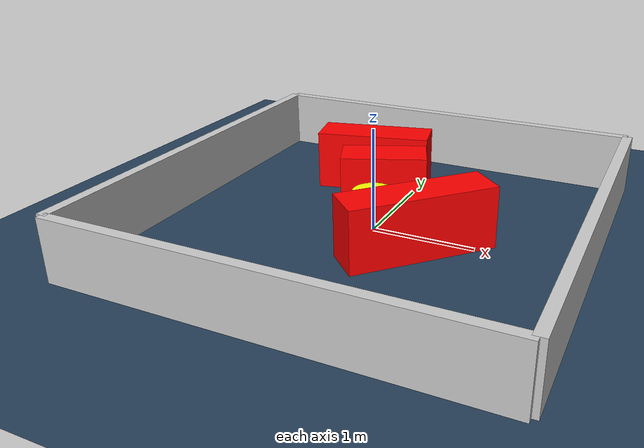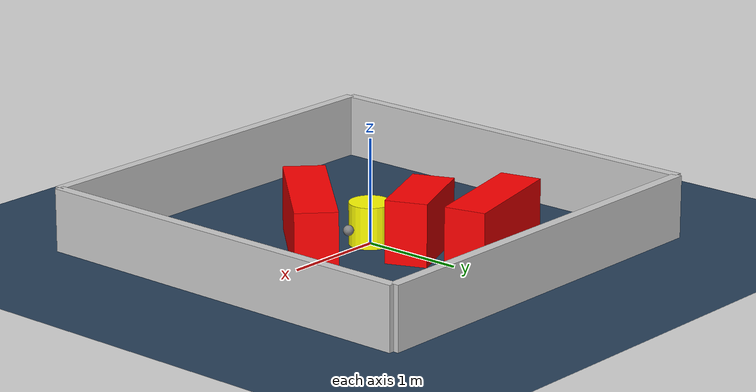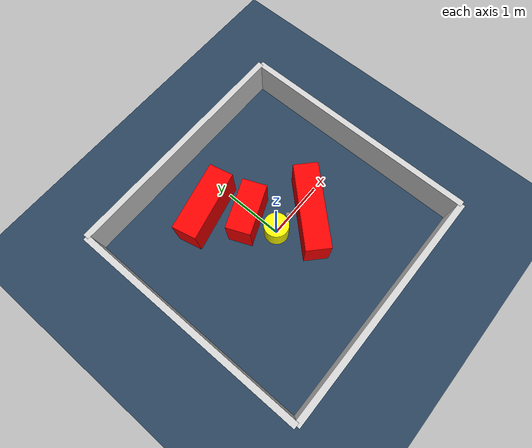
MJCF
<?xml version="1.0" ?>
<mujoco model="generated_environment">
  <option timestep="0.01" integrator="RK4" cone="elliptic"/>
  <default>
    <geom density="1"/>
  </default>
  <asset>
    <texture builtin="gradient" height="3072" rgb1="0.3 0.5 0.7" rgb2="0 0 0" type="skybox" width="512"/>
    <texture builtin="checker" height="300" mark="edge" markrgb="0.8 0.8 0.8" name="groundplane" rgb1="0.2 0.3 0.4" rgb2="0.1 0.2 0.3" type="2d" width="300"/>
    <material name="groundplane" reflectance="0.2" texrepeat="5 5" texture="groundplane" texuniform="true"/>
    <material name="robot" rgba="0.0 1.0 0.0 1"/>
  </asset>
  <worldbody>
    <light dir="0 0 -1" directional="true" pos="0 0 1.5"/>
    <geom condim="4" friction="1.0 0.005 0.001" material="groundplane" name="floor" size="0 0 0.05" type="plane"/>
    <body name="walls">
      <geom name="wall_1" condim="4" pos="-2.0 0.0 0.3" rgba="0.800000011920929 0.800000011920929 0.800000011920929 1.0" size="0.05 2.0 0.3" type="box"/>
      <geom name="wall_2" condim="4" pos="2.0 0.0 0.3" rgba="0.800000011920929 0.800000011920929 0.800000011920929 1.0" size="0.05 2.0 0.3" type="box"/>
      <geom name="wall_3" condim="4" pos="0.0 -2.0 0.3" rgba="0.800000011920929 0.800000011920929 0.800000011920929 1.0" size="2.0 0.05 0.3" type="box"/>
      <geom name="wall_4" condim="4" pos="0.0 2.0 0.3" rgba="0.800000011920929 0.800000011920929 0.800000011920929 1.0" size="2.0 0.05 0.3" type="box"/>
    </body>
    <body name="robot">
      <joint name="joint_x" type="slide" pos="0 0 0" axis="1 0 0"/>
      <joint name="joint_y" type="slide" pos="0 0 0" axis="0 1 0"/>
      <geom name="robot" type="sphere" pos="0.3 0.0 0.2" size="0.05" mass="5." friction="1.0 0.005 0.0001" condim="4" rgba="0.5 0.5 0.5 1.0"/>
      <site name="sensor_ball"/>
    </body>
    <body name="obstacle_movable_1">
      <geom name="obstacle_movable_1" condim="4" pos="0.0 0.0 0.2" euler="0 0 0.0" friction="1.0 0.005 0.001" rgba="1.0 1.0 0.0 1.0" size="0.2 0.2 0.0" type="cylinder" mass="0.1"/>
      <joint type="free"/>
    </body>
    <body name="obstacle_2_static">
      <geom name="obstacle_2_static" condim="4" pos="-0.46762316802172454 1.0663205365269677 0.3" euler="0 0 193.0134286451952" friction="1.0 0.005 0.001" rgba="1 0 0 1" size="0.5802779531518318 0.2 0.3" type="box"/>
    </body>
    <body name="obstacle_3_static">
      <geom name="obstacle_3_static" condim="4" pos="-0.11531146680142279 0.4967394865243018 0.3" euler="0 0 22.60831262620775" friction="1.0 0.005 0.001" rgba="1 0 0 1" size="0.4171182754123412 0.2 0.3" type="box"/>
    </body>
    <body name="obstacle_4_static">
      <geom name="obstacle_4_static" condim="4" pos="0.5345104925505755 -0.2577495830305043 0.3" euler="0 0 226.65145522376432" friction="1.0 0.005 0.001" rgba="1 0 0 1" size="0.7030243757030887 0.2 0.3" type="box"/>
    </body>
  </worldbody>
  <actuator>
    <motor name="actuator_x" joint="joint_x" gear="1" ctrlrange="-1 1"/>
    <motor name="actuator_y" joint="joint_y" gear="1" ctrlrange="-1 1"/>
  </actuator>
</mujoco>
